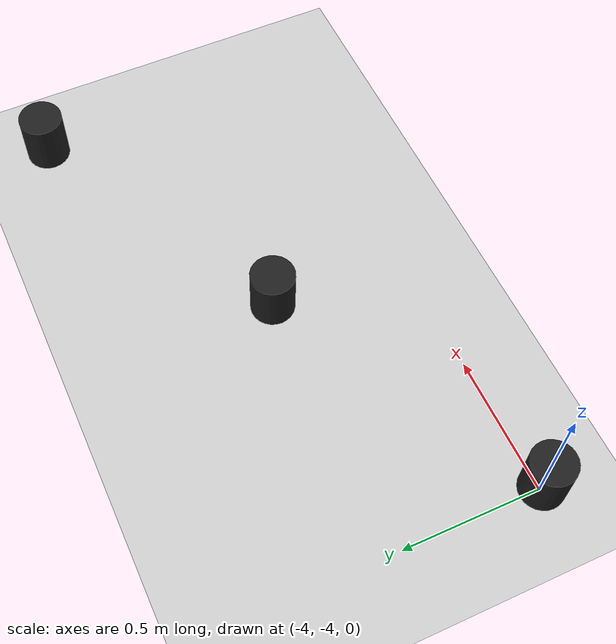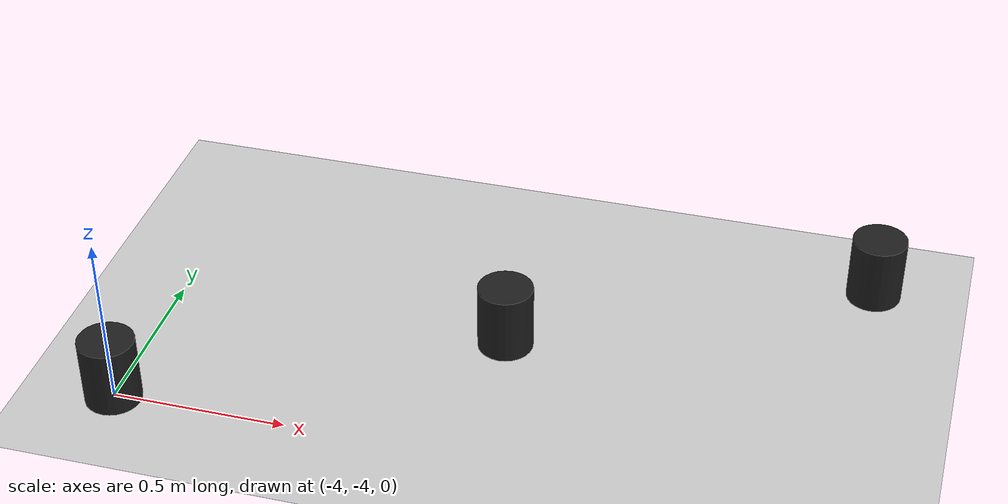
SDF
<sdf version="1.7">
 <world name="default">
  <model name="ground_plane">
   <static>1</static>
   <link name="link">
    <collision name="collision">
     <geometry><plane><normal>0 0 1</normal><size>100 100</size></plane></geometry>
     <surface>
      <contact><collide_bitmask>65535</collide_bitmask></contact>
      <friction><ode><mu>100</mu><mu2>50</mu2></ode></friction>
     </surface>
    </collision>
    <visual name="visual">
     <cast_shadows>0</cast_shadows>
     <geometry><plane><normal>0 0 1</normal><size>100 100</size></plane></geometry>
     <material>
      <script><uri>file://media/materials/scripts/gazebo.material</uri><name>Gazebo/Grey</name></script>
     </material>
    </visual>
   </link>
  </model>
  <model name="cylinder_clone_clone_0_clone_clone_0_clone_clone_clone">
   <link name="link">
    <inertial>
     <mass>1</mass>
     <inertia><ixx>0.145833</ixx><ixy>0</ixy><ixz>0</ixz><iyy>0.145833</iyy><iyz>0</iyz><izz>0.125</izz></inertia>
    </inertial>
    <visual name="visual">
     <geometry><cylinder><radius>0.08</radius><length>0.2</length></cylinder></geometry>
     <material>
      <script><name>Gazebo/Black</name><uri>file://media/materials/scripts/gazebo.material</uri></script>
      <shader type="vertex"><normal_map>__default__</normal_map></shader>
      <ambient>1 0 0 1</ambient>
      <diffuse>0.7 0.7 0.7 1</diffuse>
      <specular>0.01 0.01 0.01 1</specular>
      <emissive>0 0 0 1</emissive>
     </material>
    </visual>
    <collision name="collision">
     <geometry><cylinder><radius>0.08</radius><length>0.2</length></cylinder></geometry>
     <surface>
      <friction>
       <ode><mu>1</mu><mu2>1</mu2><fdir1>0 0 0</fdir1><slip1>0</slip1><slip2>0</slip2></ode>
       <torsional>
        <coefficient>1</coefficient>
        <patch_radius>0</patch_radius>
        <surface_radius>0</surface_radius>
        <use_patch_radius>1</use_patch_radius>
        <ode><slip>0</slip></ode>
       </torsional>
      </friction>
      <bounce><restitution_coefficient>0</restitution_coefficient><threshold>1e+06</threshold></bounce>
      <contact>
       <collide_without_contact>0</collide_without_contact>
       <collide_without_contact_bitmask>1</collide_without_contact_bitmask>
       <collide_bitmask>1</collide_bitmask>
       <ode>
        <soft_cfm>0</soft_cfm>
        <soft_erp>0.2</soft_erp>
        <kp>1e+13</kp>
        <kd>1</kd>
        <max_vel>0.01</max_vel>
        <min_depth>0</min_depth>
       </ode>
       <bullet>
        <split_impulse>1</split_impulse>
        <split_impulse_penetration_threshold>-0.01</split_impulse_penetration_threshold>
        <soft_cfm>0</soft_cfm>
        <soft_erp>0.2</soft_erp>
        <kp>1e+13</kp>
        <kd>1</kd>
       </bullet>
      </contact>
     </surface>
    </collision>
   </link>
   <static>1</static>
   <pose>-2.02448 -2.99194 0.1 0 -0 0</pose>
  </model>
  <model name="cylinder_clone_clone_0_clone_clone_0_clone_clone_clone_clone">
   <link name="link">
    <inertial>
     <mass>1</mass>
     <inertia><ixx>0.145833</ixx><ixy>0</ixy><ixz>0</ixz><iyy>0.145833</iyy><iyz>0</iyz><izz>0.125</izz></inertia>
    </inertial>
    <visual name="visual">
     <geometry><cylinder><radius>0.08</radius><length>0.2</length></cylinder></geometry>
     <material>
      <script><name>Gazebo/Black</name><uri>file://media/materials/scripts/gazebo.material</uri></script>
      <shader type="vertex"><normal_map>__default__</normal_map></shader>
      <ambient>1 0 0 1</ambient>
      <diffuse>0.7 0.7 0.7 1</diffuse>
      <specular>0.01 0.01 0.01 1</specular>
      <emissive>0 0 0 1</emissive>
     </material>
    </visual>
    <collision name="collision">
     <geometry><cylinder><radius>0.08</radius><length>0.2</length></cylinder></geometry>
     <surface>
      <friction>
       <ode><mu>1</mu><mu2>1</mu2><fdir1>0 0 0</fdir1><slip1>0</slip1><slip2>0</slip2></ode>
       <torsional>
        <coefficient>1</coefficient>
        <patch_radius>0</patch_radius>
        <surface_radius>0</surface_radius>
        <use_patch_radius>1</use_patch_radius>
        <ode><slip>0</slip></ode>
       </torsional>
      </friction>
      <bounce><restitution_coefficient>0</restitution_coefficient><threshold>1e+06</threshold></bounce>
      <contact>
       <collide_without_contact>0</collide_without_contact>
       <collide_without_contact_bitmask>1</collide_without_contact_bitmask>
       <collide_bitmask>1</collide_bitmask>
       <ode>
        <soft_cfm>0</soft_cfm>
        <soft_erp>0.2</soft_erp>
        <kp>1e+13</kp>
        <kd>1</kd>
        <max_vel>0.01</max_vel>
        <min_depth>0</min_depth>
       </ode>
       <bullet>
        <split_impulse>1</split_impulse>
        <split_impulse_penetration_threshold>-0.01</split_impulse_penetration_threshold>
        <soft_cfm>0</soft_cfm>
        <soft_erp>0.2</soft_erp>
        <kp>1e+13</kp>
        <kd>1</kd>
       </bullet>
      </contact>
     </surface>
    </collision>
   </link>
   <static>1</static>
   <pose>-3.99678 -4.00834 0.1 0 -0 0</pose>
  </model>
  <model name="cylinder_clone_clone_clone_clone_clone_clone_clone_clone_18">
   <link name="link">
    <inertial>
     <mass>1</mass>
     <inertia><ixx>0.145833</ixx><ixy>0</ixy><ixz>0</ixz><iyy>0.145833</iyy><iyz>0</iyz><izz>0.125</izz></inertia>
    </inertial>
    <visual name="visual">
     <geometry><cylinder><radius>0.08</radius><length>0.2</length></cylinder></geometry>
     <material>
      <script><name>Gazebo/Black</name><uri>file://media/materials/scripts/gazebo.material</uri></script>
      <shader type="vertex"><normal_map>__default__</normal_map></shader>
      <ambient>1 0 0 1</ambient>
      <diffuse>0.7 0.7 0.7 1</diffuse>
      <specular>0.01 0.01 0.01 1</specular>
      <emissive>0 0 0 1</emissive>
     </material>
    </visual>
    <collision name="collision">
     <geometry><cylinder><radius>0.08</radius><length>0.2</length></cylinder></geometry>
     <surface>
      <friction>
       <ode><mu>1</mu><mu2>1</mu2><fdir1>0 0 0</fdir1><slip1>0</slip1><slip2>0</slip2></ode>
       <torsional>
        <coefficient>1</coefficient>
        <patch_radius>0</patch_radius>
        <surface_radius>0</surface_radius>
        <use_patch_radius>1</use_patch_radius>
        <ode><slip>0</slip></ode>
       </torsional>
      </friction>
      <bounce><restitution_coefficient>0</restitution_coefficient><threshold>1e+06</threshold></bounce>
      <contact>
       <collide_without_contact>0</collide_without_contact>
       <collide_without_contact_bitmask>1</collide_without_contact_bitmask>
       <collide_bitmask>1</collide_bitmask>
       <ode>
        <soft_cfm>0</soft_cfm>
        <soft_erp>0.2</soft_erp>
        <kp>1e+13</kp>
        <kd>1</kd>
        <max_vel>0.01</max_vel>
        <min_depth>0</min_depth>
       </ode>
       <bullet>
        <split_impulse>1</split_impulse>
        <split_impulse_penetration_threshold>-0.01</split_impulse_penetration_threshold>
        <soft_cfm>0</soft_cfm>
        <soft_erp>0.2</soft_erp>
        <kp>1e+13</kp>
        <kd>1</kd>
       </bullet>
      </contact>
     </surface>
    </collision>
   </link>
   <static>1</static>
   <pose>-3.01221 -3.49767 0.1 0 -0 0</pose>
  </model>
 </world>
</sdf>
